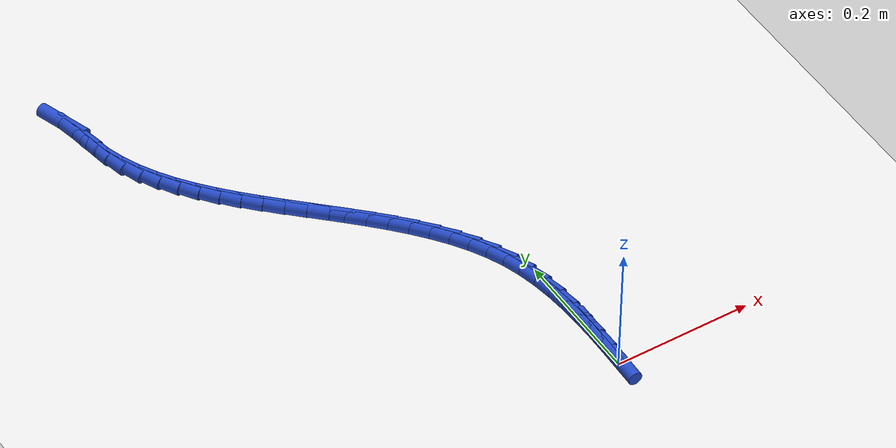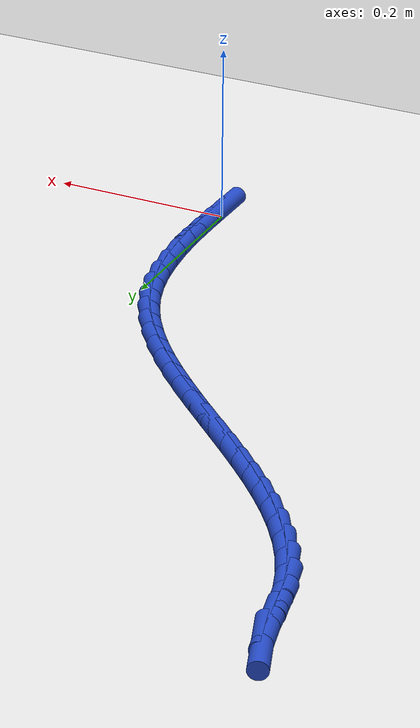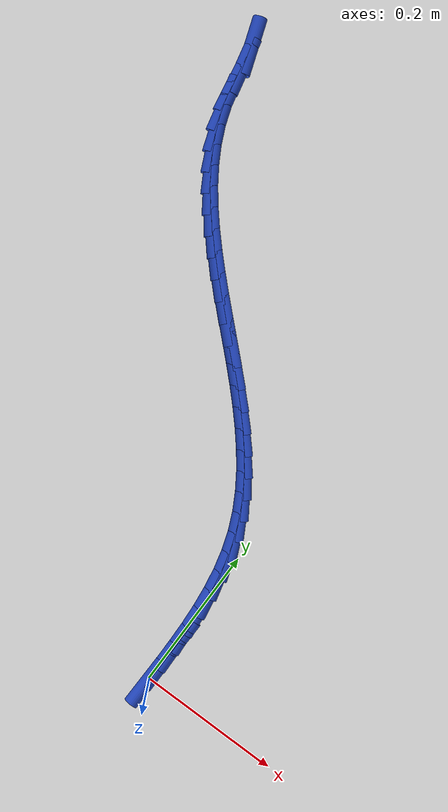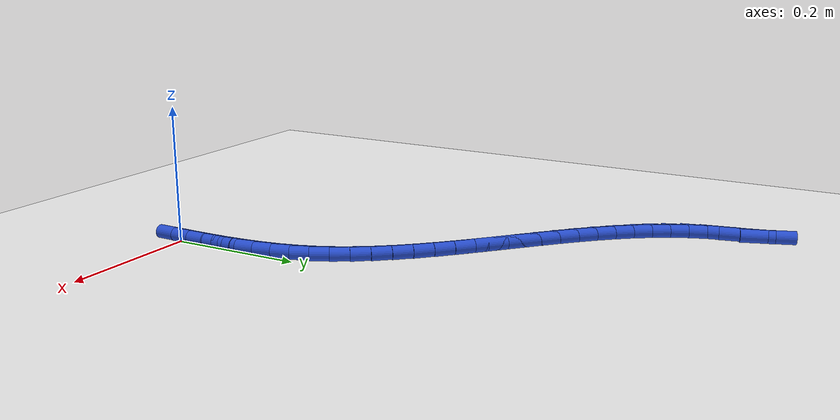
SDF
<sdf version="1.6">
 <world name="default">
  <model name="ground_plane">
   <static>1</static>
   <link name="link">
    <collision name="collision">
     <geometry><plane><normal>0 0 1</normal><size>100 100</size></plane></geometry>
     <surface><friction><ode><mu>100</mu><mu2>50</mu2></ode></friction></surface>
    </collision>
    <visual name="visual">
     <cast_shadows>0</cast_shadows>
     <geometry><plane><normal>0 0 1</normal><size>100 100</size></plane></geometry>
     <material>
      <script><uri>file://media/materials/scripts/gazebo.material</uri><name>Gazebo/WhiteGlow</name></script>
     </material>
    </visual>
   </link>
  </model>
  <model name="line">
   <link name="link_0">
    <pose>-6.315477654728063e-18 -5.551115123125783e-17 0.01 0 1.57 1.5521799722568603</pose>
    <collision name="collision">
     <geometry><cylinder><radius>0.01</radius><length>0.08</length></cylinder></geometry>
    </collision>
    <visual name="visual">
     <material>
      <script><name>Gazebo/Blue</name><uri>file://media/materials/scripts/gazebo.material</uri></script>
     </material>
     <geometry><cylinder><radius>0.01</radius><length>0.08</length></cylinder></geometry>
    </visual>
   </link>
   <link name="link_1">
    <pose>0.0005496870128518633 0.02952369159235073 0.01 0 1.57 1.5698375794840973</pose>
    <collision name="collision">
     <geometry><cylinder><radius>0.01</radius><length>0.08</length></cylinder></geometry>
    </collision>
    <visual name="visual">
     <material>
      <script><name>Gazebo/Blue</name><uri>file://media/materials/scripts/gazebo.material</uri></script>
     </material>
     <geometry><cylinder><radius>0.01</radius><length>0.08</length></cylinder></geometry>
    </visual>
   </link>
   <link name="link_2">
    <pose>0.0005779772166571195 0.059031148686111944 0.01 0 1.57 -1.544561334173158</pose>
    <collision name="collision">
     <geometry><cylinder><radius>0.01</radius><length>0.08</length></cylinder></geometry>
    </collision>
    <visual name="visual">
     <material>
      <script><name>Gazebo/Blue</name><uri>file://media/materials/scripts/gazebo.material</uri></script>
     </material>
     <geometry><cylinder><radius>0.01</radius><length>0.08</length></cylinder></geometry>
    </visual>
   </link>
   <link name="link_3">
    <pose>-0.0001920356625880761 0.08837501861110357 0.01 0 1.57 -1.507325512380247</pose>
    <collision name="collision">
     <geometry><cylinder><radius>0.01</radius><length>0.08</length></cylinder></geometry>
    </collision>
    <visual name="visual">
     <material>
      <script><name>Gazebo/Blue</name><uri>file://media/materials/scripts/gazebo.material</uri></script>
     </material>
     <geometry><cylinder><radius>0.01</radius><length>0.08</length></cylinder></geometry>
    </visual>
   </link>
   <link name="link_4">
    <pose>-0.002037257898887562 0.1174079486971456 0.01 0 1.57 -1.4593655760137818</pose>
    <collision name="collision">
     <geometry><cylinder><radius>0.01</radius><length>0.08</length></cylinder></geometry>
    </collision>
    <visual name="visual">
     <material>
      <script><name>Gazebo/Blue</name><uri>file://media/materials/scripts/gazebo.material</uri></script>
     </material>
     <geometry><cylinder><radius>0.01</radius><length>0.08</length></cylinder></geometry>
    </visual>
   </link>
   <link name="link_5">
    <pose>-0.005234595766245171 0.145982586274058 0.01 0 1.57 -1.3999180756269227</pose>
    <collision name="collision">
     <geometry><cylinder><radius>0.01</radius><length>0.08</length></cylinder></geometry>
    </collision>
    <visual name="visual">
     <material>
      <script><name>Gazebo/Blue</name><uri>file://media/materials/scripts/gazebo.material</uri></script>
     </material>
     <geometry><cylinder><radius>0.01</radius><length>0.08</length></cylinder></geometry>
    </visual>
   </link>
   <link name="link_6">
    <pose>-0.010060955538664755 0.17395157867166086 0.01 0 1.57 -1.3282990773244032</pose>
    <collision name="collision">
     <geometry><cylinder><radius>0.01</radius><length>0.08</length></cylinder></geometry>
    </collision>
    <visual name="visual">
     <material>
      <script><name>Gazebo/Blue</name><uri>file://media/materials/scripts/gazebo.material</uri></script>
     </material>
     <geometry><cylinder><radius>0.01</radius><length>0.08</length></cylinder></geometry>
    </visual>
   </link>
   <link name="link_7">
    <pose>-0.016793243490150142 0.20116757321977416 0.01 0 1.57 -1.24415492661356</pose>
    <collision name="collision">
     <geometry><cylinder><radius>0.01</radius><length>0.08</length></cylinder></geometry>
    </collision>
    <visual name="visual">
     <material>
      <script><name>Gazebo/Blue</name><uri>file://media/materials/scripts/gazebo.material</uri></script>
     </material>
     <geometry><cylinder><radius>0.01</radius><length>0.08</length></cylinder></geometry>
    </visual>
   </link>
   <link name="link_8">
    <pose>-0.025708365894705165 0.22748321724821777 0.01 0 1.57 -1.1502471378170327</pose>
    <collision name="collision">
     <geometry><cylinder><radius>0.01</radius><length>0.08</length></cylinder></geometry>
    </collision>
    <visual name="visual">
     <material>
      <script><name>Gazebo/Blue</name><uri>file://media/materials/scripts/gazebo.material</uri></script>
     </material>
     <geometry><cylinder><radius>0.01</radius><length>0.08</length></cylinder></geometry>
    </visual>
   </link>
   <link name="link_9">
    <pose>-0.03702209515663555 0.25278047668638326 0.01 0 1.57 -1.061879694904122</pose>
    <collision name="collision">
     <geometry><cylinder><radius>0.01</radius><length>0.08</length></cylinder></geometry>
    </collision>
    <visual name="visual">
     <material>
      <script><name>Gazebo/Blue</name><uri>file://media/materials/scripts/gazebo.material</uri></script>
     </material>
     <geometry><cylinder><radius>0.01</radius><length>0.08</length></cylinder></geometry>
    </visual>
   </link>
   <link name="link_10">
    <pose>-0.050596871207091575 0.2771107687571461 0.01 0 1.57 -0.9851186091933795</pose>
    <collision name="collision">
     <geometry><cylinder><radius>0.01</radius><length>0.08</length></cylinder></geometry>
    </collision>
    <visual name="visual">
     <material>
      <script><name>Gazebo/Blue</name><uri>file://media/materials/scripts/gazebo.material</uri></script>
     </material>
     <geometry><cylinder><radius>0.01</radius><length>0.08</length></cylinder></geometry>
    </visual>
   </link>
   <link name="link_11">
    <pose>-0.06616848016789426 0.3005862513552592 0.01 0 1.57 -0.9201719248379593</pose>
    <collision name="collision">
     <geometry><cylinder><radius>0.01</radius><length>0.08</length></cylinder></geometry>
    </collision>
    <visual name="visual">
     <material>
      <script><name>Gazebo/Blue</name><uri>file://media/materials/scripts/gazebo.material</uri></script>
     </material>
     <geometry><cylinder><radius>0.01</radius><length>0.08</length></cylinder></geometry>
    </visual>
   </link>
   <link name="link_12">
    <pose>-0.08347254576923875 0.3233191602552997 0.01 0 1.57 -0.8666974226638244</pose>
    <collision name="collision">
     <geometry><cylinder><radius>0.01</radius><length>0.08</length></cylinder></geometry>
    </collision>
    <visual name="visual">
     <material>
      <script><name>Gazebo/Blue</name><uri>file://media/materials/scripts/gazebo.material</uri></script>
     </material>
     <geometry><cylinder><radius>0.01</radius><length>0.08</length></cylinder></geometry>
    </visual>
   </link>
   <link name="link_13">
    <pose>-0.10224469174132038 0.3454217312318451 0.01 0 1.57 -0.824084492415108</pose>
    <collision name="collision">
     <geometry><cylinder><radius>0.01</radius><length>0.08</length></cylinder></geometry>
    </collision>
    <visual name="visual">
     <material>
      <script><name>Gazebo/Blue</name><uri>file://media/materials/scripts/gazebo.material</uri></script>
     </material>
     <geometry><cylinder><radius>0.01</radius><length>0.08</length></cylinder></geometry>
    </visual>
   </link>
   <link name="link_14">
    <pose>-0.12222054181433459 0.367006200059473 0.01 0 1.57 -0.7916561214176688</pose>
    <collision name="collision">
     <geometry><cylinder><radius>0.01</radius><length>0.08</length></cylinder></geometry>
    </collision>
    <visual name="visual">
     <material>
      <script><name>Gazebo/Blue</name><uri>file://media/materials/scripts/gazebo.material</uri></script>
     </material>
     <geometry><cylinder><radius>0.01</radius><length>0.08</length></cylinder></geometry>
    </visual>
   </link>
   <link name="link_15">
    <pose>-0.14313571971847638 0.3881848025127604 0.01 0 1.57 -0.7687980184502529</pose>
    <collision name="collision">
     <geometry><cylinder><radius>0.01</radius><length>0.08</length></cylinder></geometry>
    </collision>
    <visual name="visual">
     <material>
      <script><name>Gazebo/Blue</name><uri>file://media/materials/scripts/gazebo.material</uri></script>
     </material>
     <geometry><cylinder><radius>0.01</radius><length>0.08</length></cylinder></geometry>
    </visual>
   </link>
   <link name="link_16">
    <pose>-0.16472584918394126 0.40906977436628494 0.01 0 1.57 -0.755032846931287</pose>
    <collision name="collision">
     <geometry><cylinder><radius>0.01</radius><length>0.08</length></cylinder></geometry>
    </collision>
    <visual name="visual">
     <material>
      <script><name>Gazebo/Blue</name><uri>file://media/materials/scripts/gazebo.material</uri></script>
     </material>
     <geometry><cylinder><radius>0.01</radius><length>0.08</length></cylinder></geometry>
    </visual>
   </link>
   <link name="link_17">
    <pose>-0.1867265539409245 0.4297733513946239 0.01 0 1.57 -0.7500589999360706</pose>
    <collision name="collision">
     <geometry><cylinder><radius>0.01</radius><length>0.08</length></cylinder></geometry>
    </collision>
    <visual name="visual">
     <material>
      <script><name>Gazebo/Blue</name><uri>file://media/materials/scripts/gazebo.material</uri></script>
     </material>
     <geometry><cylinder><radius>0.01</radius><length>0.08</length></cylinder></geometry>
    </visual>
   </link>
   <link name="link_18">
    <pose>-0.20887345771962124 0.45040776937235455 0.01 0 1.57 -0.7537685517264915</pose>
    <collision name="collision">
     <geometry><cylinder><radius>0.01</radius><length>0.08</length></cylinder></geometry>
    </collision>
    <visual name="visual">
     <material>
      <script><name>Gazebo/Blue</name><uri>file://media/materials/scripts/gazebo.material</uri></script>
     </material>
     <geometry><cylinder><radius>0.01</radius><length>0.08</length></cylinder></geometry>
    </visual>
   </link>
   <link name="link_19">
    <pose>-0.23090218425022702 0.47108526407405465 0.01 0 1.57 -0.7662530137304234</pose>
    <collision name="collision">
     <geometry><cylinder><radius>0.01</radius><length>0.08</length></cylinder></geometry>
    </collision>
    <visual name="visual">
     <material>
      <script><name>Gazebo/Blue</name><uri>file://media/materials/scripts/gazebo.material</uri></script>
     </material>
     <geometry><cylinder><radius>0.01</radius><length>0.08</length></cylinder></geometry>
    </visual>
   </link>
   <link name="link_20">
    <pose>-0.25254835726293684 0.49191807127430104 0.01 0 1.57 -0.7877998977861596</pose>
    <collision name="collision">
     <geometry><cylinder><radius>0.01</radius><length>0.08</length></cylinder></geometry>
    </collision>
    <visual name="visual">
     <material>
      <script><name>Gazebo/Blue</name><uri>file://media/materials/scripts/gazebo.material</uri></script>
     </material>
     <geometry><cylinder><radius>0.01</radius><length>0.08</length></cylinder></geometry>
    </visual>
   </link>
   <link name="link_21">
    <pose>-0.2735476004879463 0.5130184267476716 0.01 0 1.57 -0.8188777530315653</pose>
    <collision name="collision">
     <geometry><cylinder><radius>0.01</radius><length>0.08</length></cylinder></geometry>
    </collision>
    <visual name="visual">
     <material>
      <script><name>Gazebo/Blue</name><uri>file://media/materials/scripts/gazebo.material</uri></script>
     </material>
     <geometry><cylinder><radius>0.01</radius><length>0.08</length></cylinder></geometry>
    </visual>
   </link>
   <link name="link_22">
    <pose>-0.2936355376554504 0.5344985662687433 0.01 0 1.57 -0.8601016999954341</pose>
    <collision name="collision">
     <geometry><cylinder><radius>0.01</radius><length>0.08</length></cylinder></geometry>
    </collision>
    <visual name="visual">
     <material>
      <script><name>Gazebo/Blue</name><uri>file://media/materials/scripts/gazebo.material</uri></script>
     </material>
     <geometry><cylinder><radius>0.01</radius><length>0.08</length></cylinder></geometry>
    </visual>
   </link>
   <link name="link_23">
    <pose>-0.3125477924956447 0.5564707256120938 0.01 0 1.57 -0.9121653038584405</pose>
    <collision name="collision">
     <geometry><cylinder><radius>0.01</radius><length>0.08</length></cylinder></geometry>
    </collision>
    <visual name="visual">
     <material>
      <script><name>Gazebo/Blue</name><uri>file://media/materials/scripts/gazebo.material</uri></script>
     </material>
     <geometry><cylinder><radius>0.01</radius><length>0.08</length></cylinder></geometry>
    </visual>
   </link>
   <link name="link_24">
    <pose>-0.3300199887387243 0.5790471405523003 0.01 0 1.57 -0.9757191790452033</pose>
    <collision name="collision">
     <geometry><cylinder><radius>0.01</radius><length>0.08</length></cylinder></geometry>
    </collision>
    <visual name="visual">
     <material>
      <script><name>Gazebo/Blue</name><uri>file://media/materials/scripts/gazebo.material</uri></script>
     </material>
     <geometry><cylinder><radius>0.01</radius><length>0.08</length></cylinder></geometry>
    </visual>
   </link>
   <link name="link_25">
    <pose>-0.3457877501148845 0.6023400468639404 0.01 0 1.57 -1.051176572079485</pose>
    <collision name="collision">
     <geometry><cylinder><radius>0.01</radius><length>0.08</length></cylinder></geometry>
    </collision>
    <visual name="visual">
     <material>
      <script><name>Gazebo/Blue</name><uri>file://media/materials/scripts/gazebo.material</uri></script>
     </material>
     <geometry><cylinder><radius>0.01</radius><length>0.08</length></cylinder></geometry>
    </visual>
   </link>
   <link name="link_26">
    <pose>-0.3595867003543206 0.626461680321591 0.01 0 1.57 -1.138440831098176</pose>
    <collision name="collision">
     <geometry><cylinder><radius>0.01</radius><length>0.08</length></cylinder></geometry>
    </collision>
    <visual name="visual">
     <material>
      <script><name>Gazebo/Blue</name><uri>file://media/materials/scripts/gazebo.material</uri></script>
     </material>
     <geometry><cylinder><radius>0.01</radius><length>0.08</length></cylinder></geometry>
    </visual>
   </link>
   <link name="link_27">
    <pose>-0.37115246318722794 0.6515242766998299 0.01 0 1.57 -1.2365909440726583</pose>
    <collision name="collision">
     <geometry><cylinder><radius>0.01</radius><length>0.08</length></cylinder></geometry>
    </collision>
    <visual name="visual">
     <material>
      <script><name>Gazebo/Blue</name><uri>file://media/materials/scripts/gazebo.material</uri></script>
     </material>
     <geometry><cylinder><radius>0.01</radius><length>0.08</length></cylinder></geometry>
    </visual>
   </link>
   <link name="link_28">
    <pose>-0.3802206623438018 0.6776400717732346 0.01 0 1.57 -1.3410440412815732</pose>
    <collision name="collision">
     <geometry><cylinder><radius>0.01</radius><length>0.08</length></cylinder></geometry>
    </collision>
    <visual name="visual">
     <material>
      <script><name>Gazebo/Blue</name><uri>file://media/materials/scripts/gazebo.material</uri></script>
     </material>
     <geometry><cylinder><radius>0.01</radius><length>0.08</length></cylinder></geometry>
    </visual>
   </link>
   <link name="link_29">
    <pose>-0.3865970740748618 0.7049034331302354 0.01 0 1.57 -1.394222935068772</pose>
    <collision name="collision">
     <geometry><cylinder><radius>0.01</radius><length>0.08</length></cylinder></geometry>
    </collision>
    <visual name="visual">
     <material>
      <script><name>Gazebo/Blue</name><uri>file://media/materials/scripts/gazebo.material</uri></script>
     </material>
     <geometry><cylinder><radius>0.01</radius><length>0.08</length></cylinder></geometry>
    </visual>
   </link>
   <link name="link_30">
    <pose>-0.39161394668679966 0.7330199285471655 0.01 0 1.57 -1.346421298038048</pose>
    <collision name="collision">
     <geometry><cylinder><radius>0.01</radius><length>0.08</length></cylinder></geometry>
    </collision>
    <visual name="visual">
     <material>
      <script><name>Gazebo/Blue</name><uri>file://media/materials/scripts/gazebo.material</uri></script>
     </material>
     <geometry><cylinder><radius>0.01</radius><length>0.08</length></cylinder></geometry>
    </visual>
   </link>
   <link name="link_31">
    <pose>-0.3980717817207699 0.761316741160868 0.01 0 1.57 -1.231528642623839</pose>
    <collision name="collision">
     <geometry><cylinder><radius>0.01</radius><length>0.08</length></cylinder></geometry>
    </collision>
    <visual name="visual">
     <material>
      <script><name>Gazebo/Blue</name><uri>file://media/materials/scripts/gazebo.material</uri></script>
     </material>
     <geometry><cylinder><radius>0.01</radius><length>0.08</length></cylinder></geometry>
    </visual>
   </link>
   <link name="link_271">
    <pose>0.0006202161803806599 0.02953983587832101 0.01 0 1.57 1.553175390982411</pose>
    <collision name="collision">
     <geometry><cylinder><radius>0.01</radius><length>0.08</length></cylinder></geometry>
    </collision>
    <visual name="visual">
     <material>
      <script><name>Gazebo/Blue</name><uri>file://media/materials/scripts/gazebo.material</uri></script>
     </material>
     <geometry><cylinder><radius>0.01</radius><length>0.08</length></cylinder></geometry>
    </visual>
   </link>
   <link name="link_272">
    <pose>0.0011422105568874685 0.059160302973872106 0.01 0 1.57 1.5514916815005861</pose>
    <collision name="collision">
     <geometry><cylinder><radius>0.01</radius><length>0.08</length></cylinder></geometry>
    </collision>
    <visual name="visual">
     <material>
      <script><name>Gazebo/Blue</name><uri>file://media/materials/scripts/gazebo.material</uri></script>
     </material>
     <geometry><cylinder><radius>0.01</radius><length>0.08</length></cylinder></geometry>
    </visual>
   </link>
  </model>
 </world>
</sdf>
